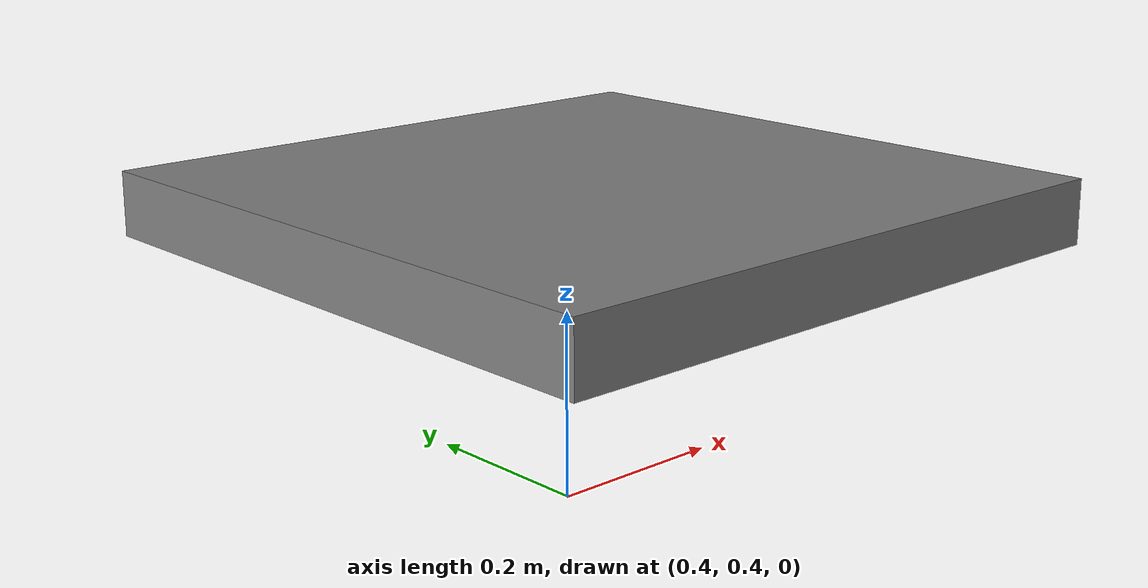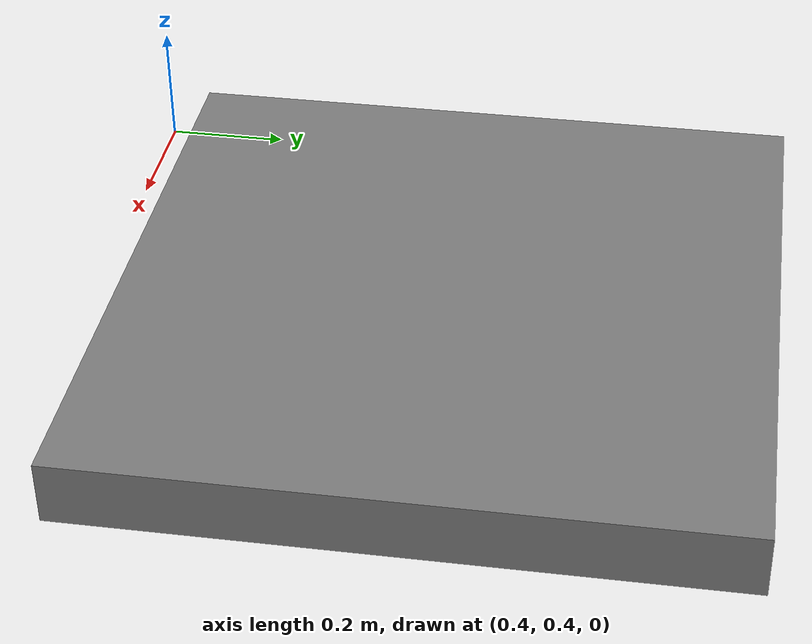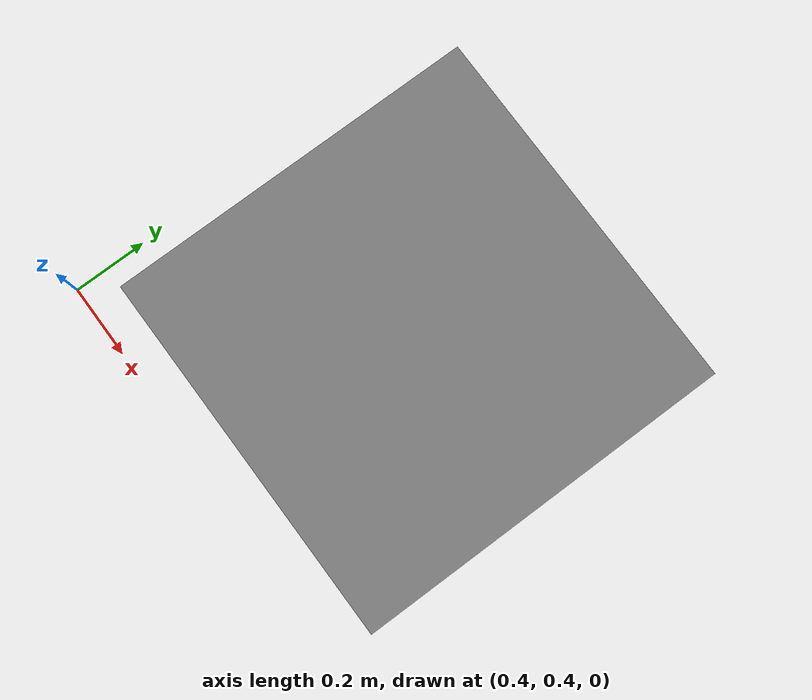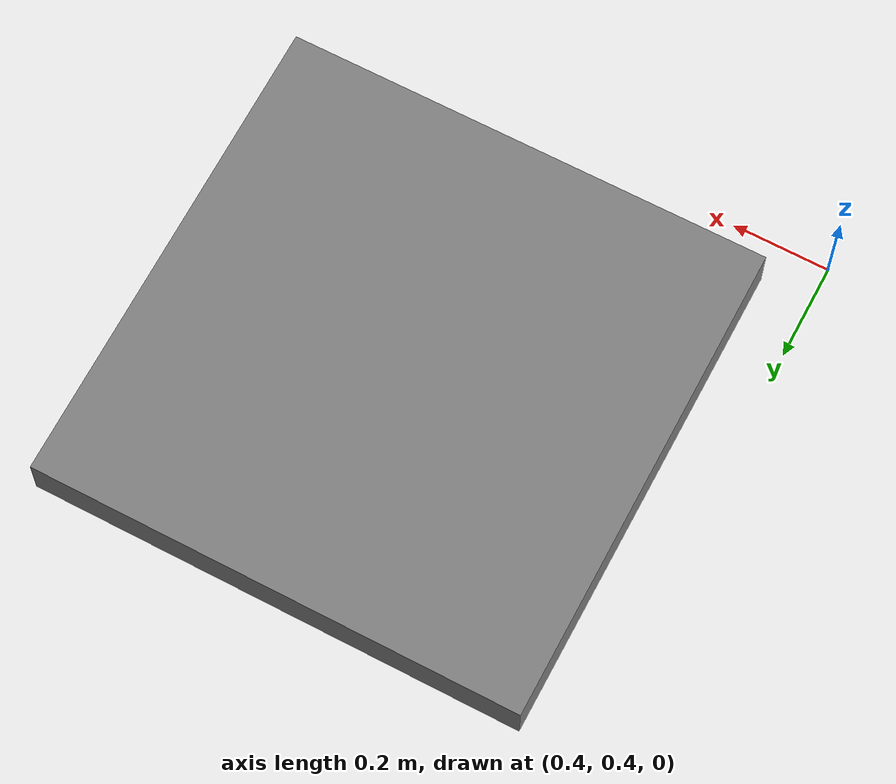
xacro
<?xml version="1.0"?>
<robot xmlns:xacro="http://www.ros.org/wiki/xacro" name="robot">

	<xacro:include filename="test_include.xacro"/>

	<link name="world">
	</link>

	<joint name="world_base_joint" type="continuous">
		<origin xyz="1 1 0" rpy="0 0 0"/>
		<parent link="world"/>
		<child link="base"/>
	</joint>

	<link name="base">
		<visual>
			<origin xyz="0 0 0.1" rpy="0 0 0"/>
			<geometry>
				<box size="1 1 0.1"/>
			</geometry>
			<material name="grey"/>
		</visual>
		<collision>
			<origin xyz="0 0 0.1" rpy="0 0 0"/>
			<geometry>
				<box size="1 1 0.1"/>
			</geometry>
		</collision>
		<xacro:inertial_box mass="12" x="0" y="0" z="0">
			<origin xyz="0 0 0.1" rpy="0 0 0"/>
		</xacro:inertial_box>
	</link>

</robot>

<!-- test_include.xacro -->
<robot xmlns:xacro="http://www.ros.org/wiki/xacro">

	<material name="grey">
		<color rgba="0.5 0.5 0.5 1"/>
	</material>

	<xacro:macro name="inertial_box" params="mass x y z *origin">
		<inertial>
			<xacro:insert_block name="origin"/>
			<mass value="${mass}"/>
			<inertia ixx="${(1/12)*mass*(y*y+z*z)}" ixy="0.0"
					 ixz="0.0" iyy="${(1/12)*mass*(x*x+z*z)}"
					 iyz="0.0" izz="${(1/12)*mass*(x*x+y*y)}"/>
		</inertial>
	</xacro:macro>

</robot>
